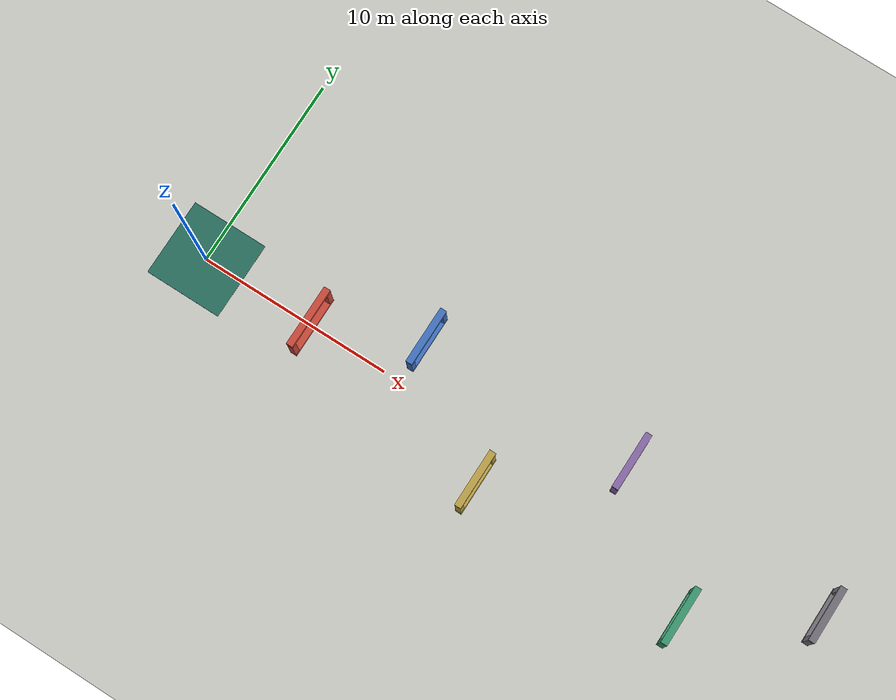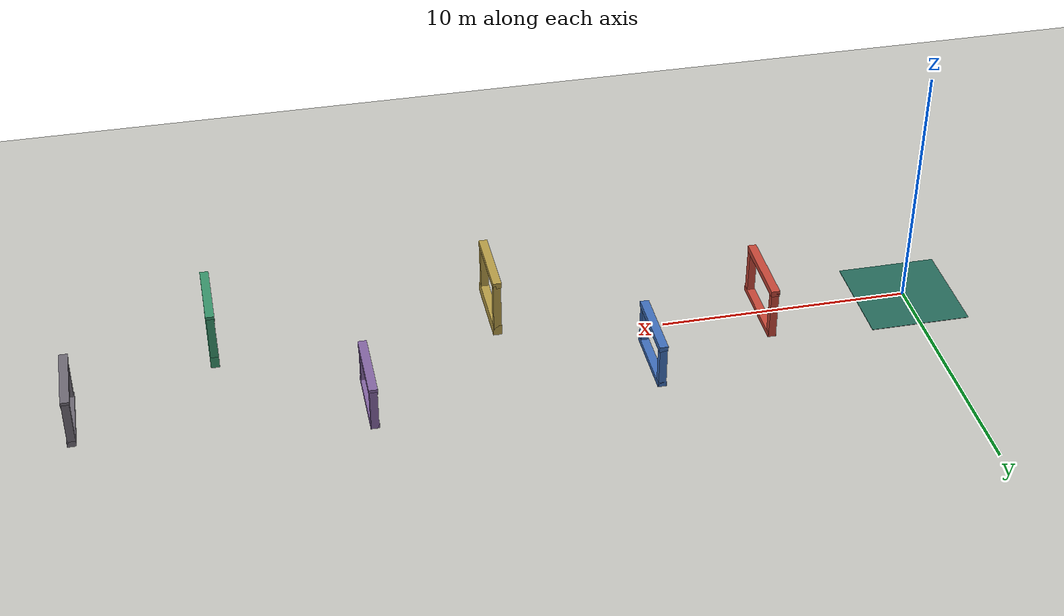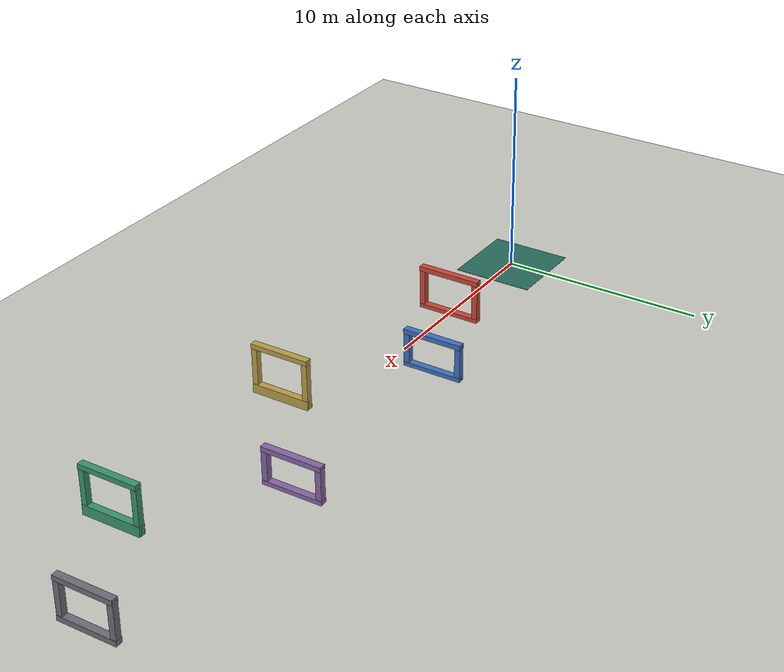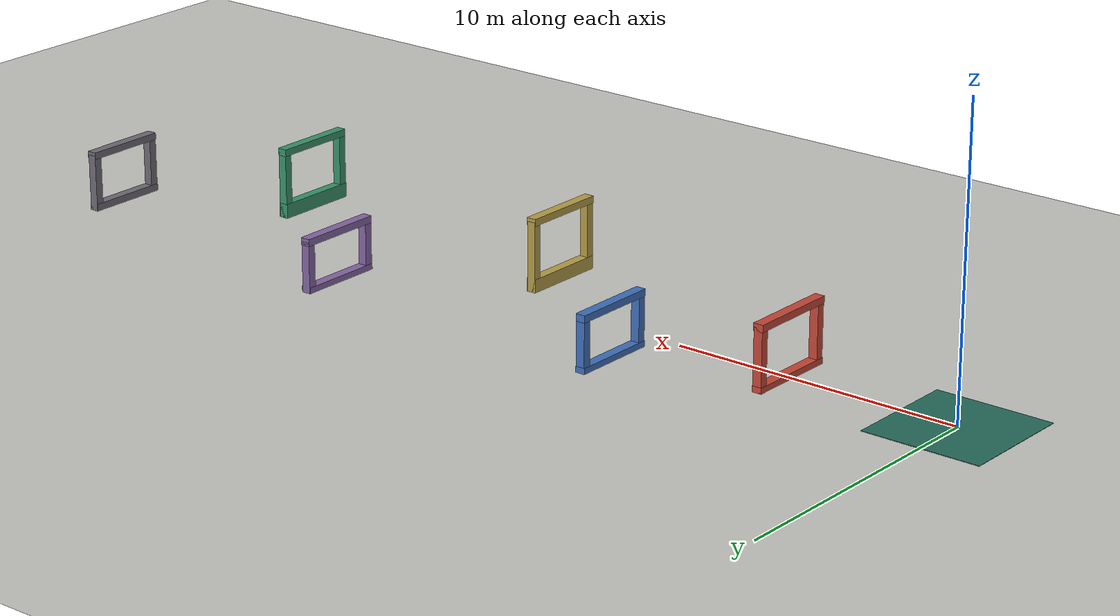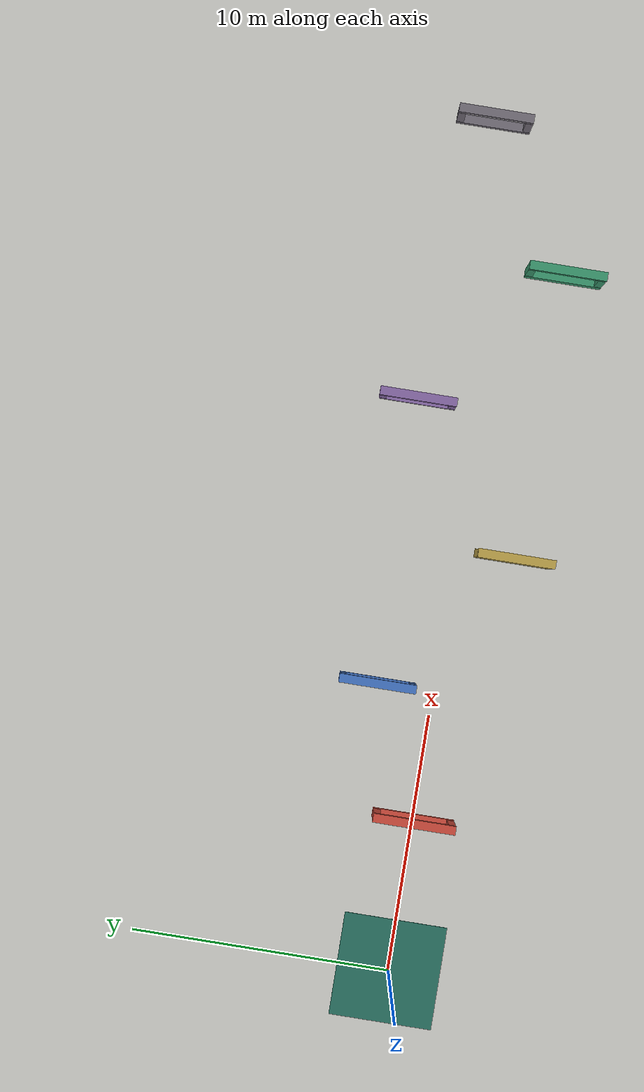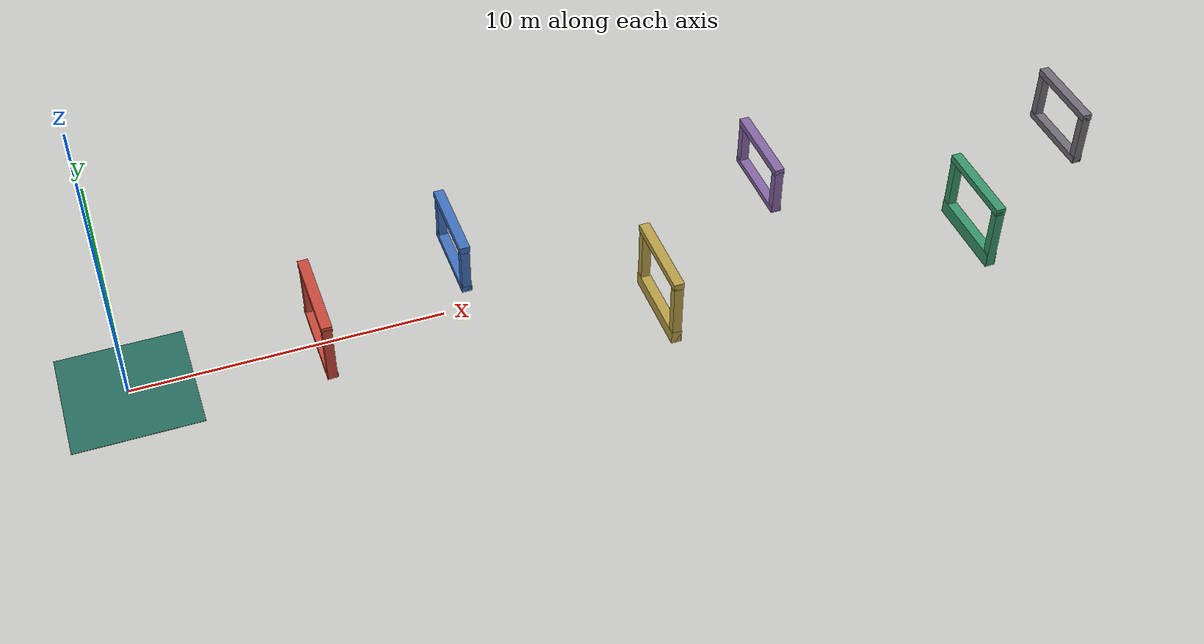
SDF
<?xml version="1.0" encoding="UTF-8"?>
<sdf version="1.9">
  <world name="hnuter_narrow">
    <physics type="ode">
      <max_step_size>0.004</max_step_size>
      <real_time_factor>1.0</real_time_factor>
      <real_time_update_rate>250</real_time_update_rate>
    </physics>
    <gravity>0 0 -9.8</gravity>
    <magnetic_field>6e-06 2.3e-05 -4.2e-05</magnetic_field>
    <atmosphere type="adiabatic"/>
    <scene>
      <grid>false</grid>
      <ambient>0.45 0.45 0.45 1</ambient>
      <background>0.70 0.74 0.78 1</background>
      <shadows>true</shadows>
    </scene>

    <model name="ground_plane">
      <static>true</static>
      <link name="link">
        <collision name="collision">
          <geometry>
            <plane>
              <normal>0 0 1</normal>
              <size>1 1</size>
            </plane>
          </geometry>
          <surface>
            <friction><ode/></friction>
            <bounce/>
            <contact/>
          </surface>
        </collision>
        <visual name="visual">
          <geometry>
            <plane>
              <normal>0 0 1</normal>
              <size>500 500</size>
            </plane>
          </geometry>
          <material>
            <ambient>0.78 0.78 0.76 1</ambient>
            <diffuse>0.78 0.78 0.76 1</diffuse>
            <specular>0.35 0.35 0.35 1</specular>
          </material>
        </visual>
      </link>
    </model>

    <model name="start_pad">
      <static>true</static>
      <pose>0 0 0.01 0 0 0</pose>
      <link name="link">
        <visual name="visual">
          <geometry><box><size>4.0 4.0 0.02</size></box></geometry>
          <material>
            <ambient>0.15 0.42 0.36 1</ambient>
            <diffuse>0.15 0.42 0.36 1</diffuse>
          </material>
        </visual>
      </link>
    </model>

    <!-- Six complete four-sided frames form a wide S-shaped course along +X. -->
    <!-- Gate 1: y=0.0, opening 2.6 m wide and z=0.20..1.95 m. -->
    <model name="gate_01_frame">
      <static>true</static>
      <pose>6.0 0.0 0 0 0 0</pose>
      <link name="left_post">
        <pose>0 1.44 1.035 0 0 0</pose>
        <collision name="collision"><geometry><box><size>0.30 0.28 2.07</size></box></geometry></collision>
        <visual name="visual"><geometry><box><size>0.30 0.28 2.07</size></box></geometry><material><ambient>0.78 0.28 0.22 1</ambient><diffuse>0.78 0.28 0.22 1</diffuse></material></visual>
      </link>
      <link name="right_post">
        <pose>0 -1.44 1.035 0 0 0</pose>
        <collision name="collision"><geometry><box><size>0.30 0.28 2.07</size></box></geometry></collision>
        <visual name="visual"><geometry><box><size>0.30 0.28 2.07</size></box></geometry><material><ambient>0.78 0.28 0.22 1</ambient><diffuse>0.78 0.28 0.22 1</diffuse></material></visual>
      </link>
      <link name="top_bar">
        <pose>0 0 2.07 0 0 0</pose>
        <collision name="collision"><geometry><box><size>0.34 3.16 0.24</size></box></geometry></collision>
        <visual name="visual"><geometry><box><size>0.34 3.16 0.24</size></box></geometry><material><ambient>0.78 0.28 0.22 1</ambient><diffuse>0.78 0.28 0.22 1</diffuse></material></visual>
      </link>
      <link name="bottom_bar">
        <pose>0 0 0.10 0 0 0</pose>
        <collision name="collision"><geometry><box><size>0.34 3.16 0.20</size></box></geometry></collision>
        <visual name="visual"><geometry><box><size>0.34 3.16 0.20</size></box></geometry><material><ambient>0.78 0.28 0.22 1</ambient><diffuse>0.78 0.28 0.22 1</diffuse></material></visual>
      </link>
    </model>

    <!-- Gate 2: y=+2.2, low opening 2.4 m wide and z=0.20..1.65 m. -->
    <model name="gate_02_frame">
      <static>true</static>
      <pose>11.0 2.2 0 0 0 0</pose>
      <link name="left_post">
        <pose>0 1.34 0.885 0 0 0</pose>
        <collision name="collision"><geometry><box><size>0.30 0.28 1.77</size></box></geometry></collision>
        <visual name="visual"><geometry><box><size>0.30 0.28 1.77</size></box></geometry><material><ambient>0.25 0.44 0.74 1</ambient><diffuse>0.25 0.44 0.74 1</diffuse></material></visual>
      </link>
      <link name="right_post">
        <pose>0 -1.34 0.885 0 0 0</pose>
        <collision name="collision"><geometry><box><size>0.30 0.28 1.77</size></box></geometry></collision>
        <visual name="visual"><geometry><box><size>0.30 0.28 1.77</size></box></geometry><material><ambient>0.25 0.44 0.74 1</ambient><diffuse>0.25 0.44 0.74 1</diffuse></material></visual>
      </link>
      <link name="top_bar">
        <pose>0 0 1.77 0 0 0</pose>
        <collision name="collision"><geometry><box><size>0.34 2.96 0.24</size></box></geometry></collision>
        <visual name="visual"><geometry><box><size>0.34 2.96 0.24</size></box></geometry><material><ambient>0.25 0.44 0.74 1</ambient><diffuse>0.25 0.44 0.74 1</diffuse></material></visual>
      </link>
      <link name="bottom_bar">
        <pose>0 0 0.10 0 0 0</pose>
        <collision name="collision"><geometry><box><size>0.34 2.96 0.20</size></box></geometry></collision>
        <visual name="visual"><geometry><box><size>0.34 2.96 0.20</size></box></geometry><material><ambient>0.25 0.44 0.74 1</ambient><diffuse>0.25 0.44 0.74 1</diffuse></material></visual>
      </link>
    </model>

    <!-- Gate 3: y=-2.2, raised opening 2.4 m wide and z=0.45..2.25 m. -->
    <model name="gate_03_frame">
      <static>true</static>
      <pose>16.5 -2.2 0 0 0 0</pose>
      <link name="left_post">
        <pose>0 1.34 1.185 0 0 0</pose>
        <collision name="collision"><geometry><box><size>0.30 0.28 2.37</size></box></geometry></collision>
        <visual name="visual"><geometry><box><size>0.30 0.28 2.37</size></box></geometry><material><ambient>0.72 0.62 0.28 1</ambient><diffuse>0.72 0.62 0.28 1</diffuse></material></visual>
      </link>
      <link name="right_post">
        <pose>0 -1.34 1.185 0 0 0</pose>
        <collision name="collision"><geometry><box><size>0.30 0.28 2.37</size></box></geometry></collision>
        <visual name="visual"><geometry><box><size>0.30 0.28 2.37</size></box></geometry><material><ambient>0.72 0.62 0.28 1</ambient><diffuse>0.72 0.62 0.28 1</diffuse></material></visual>
      </link>
      <link name="top_bar">
        <pose>0 0 2.37 0 0 0</pose>
        <collision name="collision"><geometry><box><size>0.34 2.96 0.24</size></box></geometry></collision>
        <visual name="visual"><geometry><box><size>0.34 2.96 0.24</size></box></geometry><material><ambient>0.72 0.62 0.28 1</ambient><diffuse>0.72 0.62 0.28 1</diffuse></material></visual>
      </link>
      <link name="bottom_bar">
        <pose>0 0 0.225 0 0 0</pose>
        <collision name="collision"><geometry><box><size>0.34 2.96 0.45</size></box></geometry></collision>
        <visual name="visual"><geometry><box><size>0.34 2.96 0.45</size></box></geometry><material><ambient>0.72 0.62 0.28 1</ambient><diffuse>0.72 0.62 0.28 1</diffuse></material></visual>
      </link>
    </model>

    <!-- Gate 4: y=+2.4, lowest opening 2.4 m wide and z=0.20..1.60 m. -->
    <model name="gate_04_frame">
      <static>true</static>
      <pose>22.0 2.4 0 0 0 0</pose>
      <link name="left_post">
        <pose>0 1.34 0.86 0 0 0</pose>
        <collision name="collision"><geometry><box><size>0.30 0.28 1.72</size></box></geometry></collision>
        <visual name="visual"><geometry><box><size>0.30 0.28 1.72</size></box></geometry><material><ambient>0.52 0.40 0.64 1</ambient><diffuse>0.52 0.40 0.64 1</diffuse></material></visual>
      </link>
      <link name="right_post">
        <pose>0 -1.34 0.86 0 0 0</pose>
        <collision name="collision"><geometry><box><size>0.30 0.28 1.72</size></box></geometry></collision>
        <visual name="visual"><geometry><box><size>0.30 0.28 1.72</size></box></geometry><material><ambient>0.52 0.40 0.64 1</ambient><diffuse>0.52 0.40 0.64 1</diffuse></material></visual>
      </link>
      <link name="top_bar">
        <pose>0 0 1.72 0 0 0</pose>
        <collision name="collision"><geometry><box><size>0.34 2.96 0.24</size></box></geometry></collision>
        <visual name="visual"><geometry><box><size>0.34 2.96 0.24</size></box></geometry><material><ambient>0.52 0.40 0.64 1</ambient><diffuse>0.52 0.40 0.64 1</diffuse></material></visual>
      </link>
      <link name="bottom_bar">
        <pose>0 0 0.10 0 0 0</pose>
        <collision name="collision"><geometry><box><size>0.34 2.96 0.20</size></box></geometry></collision>
        <visual name="visual"><geometry><box><size>0.34 2.96 0.20</size></box></geometry><material><ambient>0.52 0.40 0.64 1</ambient><diffuse>0.52 0.40 0.64 1</diffuse></material></visual>
      </link>
    </model>

    <!-- Gate 5: y=-2.4, raised opening 2.4 m wide and z=0.50..2.20 m. -->
    <model name="gate_05_frame">
      <static>true</static>
      <pose>27.5 -2.4 0 0 0 0</pose>
      <link name="left_post">
        <pose>0 1.34 1.16 0 0 0</pose>
        <collision name="collision"><geometry><box><size>0.30 0.28 2.32</size></box></geometry></collision>
        <visual name="visual"><geometry><box><size>0.30 0.28 2.32</size></box></geometry><material><ambient>0.22 0.58 0.42 1</ambient><diffuse>0.22 0.58 0.42 1</diffuse></material></visual>
      </link>
      <link name="right_post">
        <pose>0 -1.34 1.16 0 0 0</pose>
        <collision name="collision"><geometry><box><size>0.30 0.28 2.32</size></box></geometry></collision>
        <visual name="visual"><geometry><box><size>0.30 0.28 2.32</size></box></geometry><material><ambient>0.22 0.58 0.42 1</ambient><diffuse>0.22 0.58 0.42 1</diffuse></material></visual>
      </link>
      <link name="top_bar">
        <pose>0 0 2.32 0 0 0</pose>
        <collision name="collision"><geometry><box><size>0.34 2.96 0.24</size></box></geometry></collision>
        <visual name="visual"><geometry><box><size>0.34 2.96 0.24</size></box></geometry><material><ambient>0.22 0.58 0.42 1</ambient><diffuse>0.22 0.58 0.42 1</diffuse></material></visual>
      </link>
      <link name="bottom_bar">
        <pose>0 0 0.25 0 0 0</pose>
        <collision name="collision"><geometry><box><size>0.34 2.96 0.50</size></box></geometry></collision>
        <visual name="visual"><geometry><box><size>0.34 2.96 0.50</size></box></geometry><material><ambient>0.22 0.58 0.42 1</ambient><diffuse>0.22 0.58 0.42 1</diffuse></material></visual>
      </link>
    </model>

    <!-- Gate 6: y=+1.2, final opening 2.3 m wide and z=0.25..1.85 m. -->
    <model name="gate_06_frame">
      <static>true</static>
      <pose>33.0 1.2 0 0 0 0</pose>
      <link name="left_post">
        <pose>0 1.29 0.985 0 0 0</pose>
        <collision name="collision"><geometry><box><size>0.30 0.28 1.97</size></box></geometry></collision>
        <visual name="visual"><geometry><box><size>0.30 0.28 1.97</size></box></geometry><material><ambient>0.44 0.42 0.46 1</ambient><diffuse>0.44 0.42 0.46 1</diffuse></material></visual>
      </link>
      <link name="right_post">
        <pose>0 -1.29 0.985 0 0 0</pose>
        <collision name="collision"><geometry><box><size>0.30 0.28 1.97</size></box></geometry></collision>
        <visual name="visual"><geometry><box><size>0.30 0.28 1.97</size></box></geometry><material><ambient>0.44 0.42 0.46 1</ambient><diffuse>0.44 0.42 0.46 1</diffuse></material></visual>
      </link>
      <link name="top_bar">
        <pose>0 0 1.97 0 0 0</pose>
        <collision name="collision"><geometry><box><size>0.34 2.86 0.24</size></box></geometry></collision>
        <visual name="visual"><geometry><box><size>0.34 2.86 0.24</size></box></geometry><material><ambient>0.44 0.42 0.46 1</ambient><diffuse>0.44 0.42 0.46 1</diffuse></material></visual>
      </link>
      <link name="bottom_bar">
        <pose>0 0 0.125 0 0 0</pose>
        <collision name="collision"><geometry><box><size>0.34 2.86 0.25</size></box></geometry></collision>
        <visual name="visual"><geometry><box><size>0.34 2.86 0.25</size></box></geometry><material><ambient>0.44 0.42 0.46 1</ambient><diffuse>0.44 0.42 0.46 1</diffuse></material></visual>
      </link>
    </model>

    <light name="sunUTC" type="directional">
      <pose>0 0 500 0 0 0</pose>
      <cast_shadows>true</cast_shadows>
      <intensity>1</intensity>
      <direction>0.001 0.625 -0.78</direction>
      <diffuse>0.904 0.904 0.904 1</diffuse>
      <specular>0.271 0.271 0.271 1</specular>
      <attenuation>
        <range>2000</range>
        <linear>0</linear>
        <constant>1</constant>
        <quadratic>0</quadratic>
      </attenuation>
    </light>
    <spherical_coordinates>
      <surface_model>EARTH_WGS84</surface_model>
      <world_frame_orientation>ENU</world_frame_orientation>
      <latitude_deg>47.397971057728974</latitude_deg>
      <longitude_deg>8.546163739800146</longitude_deg>
      <elevation>0</elevation>
    </spherical_coordinates>
  </world>
</sdf>
